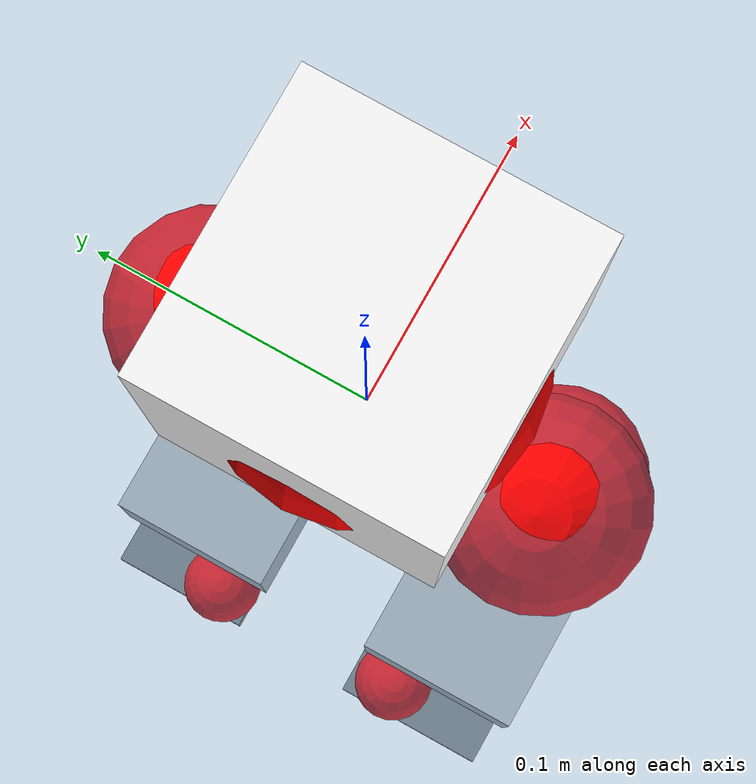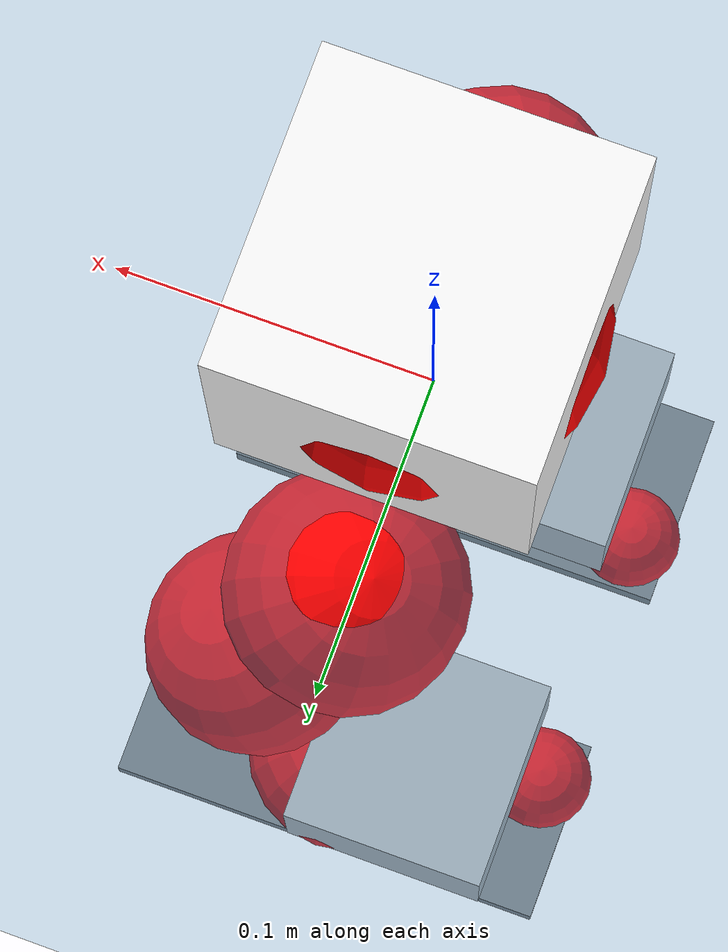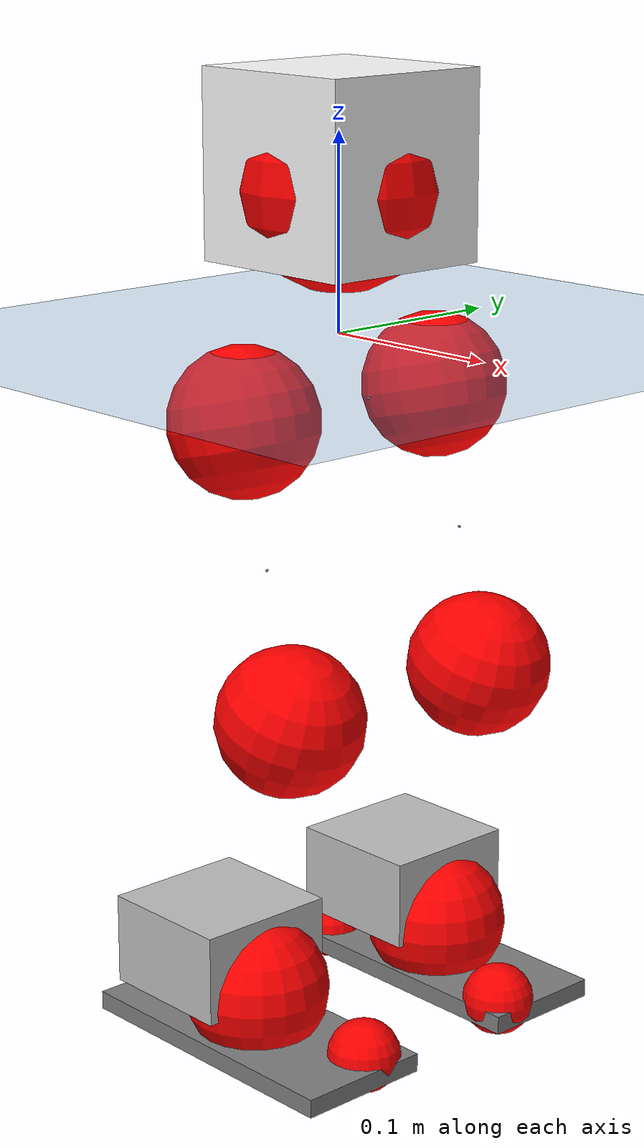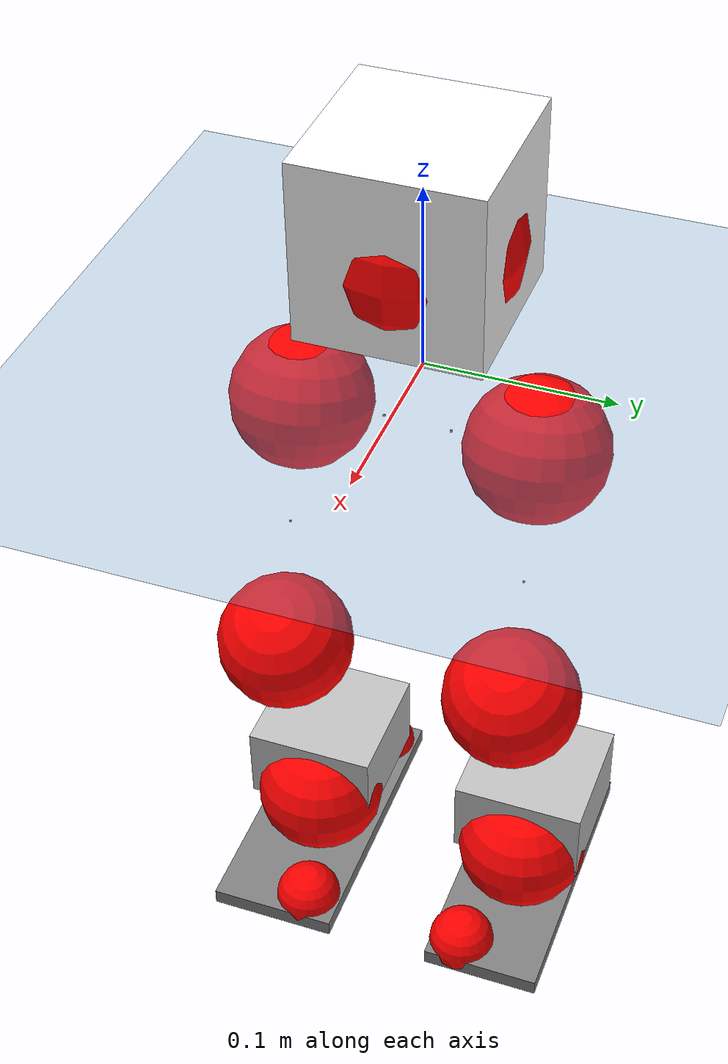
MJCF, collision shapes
<mujoco model="pi_12dof_release_v1">
  <compiler angle="radian" assetdir="assets" balanceinertia="true" inertiafromgeom="false"/>

  <option timestep="0.005" density="1.2" viscosity="2e-05"/>

  <size nkey="1"/>

  <visual>
    <quality shadowsize="8192"/>
    <map shadowclip="0.5"/>
  </visual>

  <default>
    <default class="/">
      <joint armature="0.01" damping="0.01" frictionloss="0.01"/>
      <geom contype="0" conaffinity="0" group="1" solref="-1000 -80"/>
      <site size="0.01 0.005 0.005" group="5"/>
      <general forcelimited="true" biastype="affine" gainprm="20" biasprm="0 -20 -0.5"/>
      <default class="foot">
        <geom size="0.0845 0.036 0.005" type="box" condim="6" group="4" priority="1" friction="0.9 0.2 0.2" solimp="0.015 1 0.005"/>
      </default>
      <default class="reward_collision_sphere">
        <geom group="5" rgba="1 0 0 1"/>
      </default>
    </default>
  </default>

  <asset>
    <texture type="skybox" colorspace="auto" name="//unnamed_texture_0" builtin="gradient" rgb1="0.95 0.95 0.95" rgb2="0.95 0.95 0.95" width="100" height="600"/>
    <texture type="2d" colorspace="auto" name="texplane" builtin="checker" rgb1="0.345 0.575 0.748" rgb2="0.345 0.575 0.748" markrgb="1 1 1" width="512" height="512"/>
    <material name="MatPlane" class="/" texture="texplane" texuniform="true" texrepeat="2 2" specular="0.9"/>
    <mesh name="baselink_1" class="/" file="baselink_1.STL"/>
    <mesh name="r_hip_pitch_link" class="/" file="r_hip_pitch_link.STL"/>
    <mesh name="r_hip_roll_link" class="/" file="r_hip_roll_link.STL"/>
    <mesh name="r_thigh_link" class="/" file="r_thigh_link.STL"/>
    <mesh name="r_calf_link" class="/" file="r_calf_link.STL"/>
    <mesh name="r_ankle_pitch_link" class="/" file="r_ankle_pitch_link.STL"/>
    <mesh name="r_ankle_roll_link" class="/" file="r_ankle_roll_link.STL"/>
    <mesh name="l_hip_pitch_link" class="/" file="l_hip_pitch_link.STL"/>
    <mesh name="l_hip_roll_link" class="/" file="l_hip_roll_link.STL"/>
    <mesh name="l_thigh_link" class="/" file="l_thigh_link.STL"/>
    <mesh name="l_calf_link" class="/" file="l_calf_link.STL"/>
    <mesh name="l_ankle_pitch_link" class="/" file="l_ankle_pitch_link.STL"/>
    <mesh name="l_ankle_roll_link" class="/" file="l_ankle_roll_link.STL"/>
  </asset>

  <worldbody>
    <geom name="floor" class="/" size="100 100 0.125" type="plane" group="0" material="MatPlane"/>
    <light name="toplight_shadow" class="/" pos="0 0 5" dir="0.0990148 0.0990148 -0.990148" type="directional" ambient="0.04 0.04 0.04" diffuse="0.55 0.55 0.55" specular="0.12 0.12 0.12"/>
    <light name="toplight_fill" class="/" pos="0 0 5" dir="0.0990148 0.0990148 -0.990148" type="directional" castshadow="false" ambient="0.04 0.04 0.04" diffuse="0.3 0.3 0.3" specular="0.08 0.08 0.08"/>
    <body name="trunk" pos="0.00216967 -0.000928997 -0.000553776" quat="1 3.68486e-06 0.000309771 0.000276651">
      <inertial pos="0.00249024 0.00044575 0.0423469" quat="0.695325 0.00886328 0.00937822 0.71858" mass="1.84018" diaginertia="0.00913455 0.0034793 0.00536829"/>
      <joint name="//unnamed_joint_0" type="free"/>
      <geom name="//unnamed_geom_1" class="/" type="mesh" density="0" rgba="1 1 1 1" mesh="baselink_1"/>
      <geom name="//unnamed_geom_2" class="/" size="0.0475125 0.0475125 0.0475125" pos="0 0 0.0841226" type="box" rgba="1 1 1 1"/>
      <geom name="//unnamed_geom_3" class="reward_collision_sphere" size="0.0522638" pos="0 0 0.0736073"/>
      <site name="imu" class="/" pos="-0.00488764 -0.000609863 -0.012522" size="0.0095025"/>
      <camera name="track" class="/" pos="0 -1.64499 0" quat="0.707107 0.707107 0 0" mode="trackcom"/>
      <camera name="ego_camera" class="/" pos="0.0732543 0 0.189276" quat="-0.5 -0.5 0.5 0.5"/>
      <body name="r_hip_pitch_link" pos="0.00125386 -0.0188328 -0.0346074" quat="0.992226 -0.0010296 -0.124443 0.000273629">
        <inertial pos="-0.00129329 -0.0459644 6.99134e-05" quat="-0.0191091 0.705728 -0.0279047 0.707675" mass="0.319196" diaginertia="9.69303e-05 3.63008e-05 0.000106131"/>
        <joint name="r_hip_pitch_joint" class="/" pos="0 0 0" axis="-0.0100561 -0.999917 0.00810215" stiffness="0.00161166" range="-1.70082 1.26341" armature="0.00946504" damping="0.0247967" frictionloss="0.00951916"/>
        <geom name="//unnamed_geom_4" class="/" type="mesh" density="0" rgba="0.75294 0.75294 0.75294 1" mesh="r_hip_pitch_link"/>
        <geom name="//unnamed_geom_5" class="/" size="0.000475125 0.000475125 0.000475125" type="box" rgba="0.75294 0.75294 0.75294 1"/>
        <body name="r_hip_roll_link" pos="-0.000709995 -0.0452847 0.000362142" quat="1 -6.86763e-06 3.30428e-05 -0.000154284">
          <inertial pos="-0.00141989 0.000276246 -0.0671227" quat="0.70604 -0.0788219 -0.0797709 0.699237" mass="0.339492" diaginertia="0.000301052 0.000106148 0.000167225"/>
          <joint name="r_hip_roll_joint" class="/" pos="0 0 0" axis="-0.999961 -0.00879128 0.000530291" stiffness="0.000395223" range="-0.120034 0.537334" armature="0.00914526" damping="0.00629878" frictionloss="0.00896818"/>
          <geom name="//unnamed_geom_6" class="/" type="mesh" density="0" rgba="0.75294 0.75294 0.75294 1" mesh="r_hip_roll_link"/>
          <geom name="//unnamed_geom_7" class="/" size="0.000475125 0.000475125 0.000475125" type="box" rgba="0.75294 0.75294 0.75294 1"/>
          <geom name="//unnamed_geom_8" class="reward_collision_sphere" size="0.03801"/>
          <body name="r_thigh_link" pos="0.000488797 -0.00199616 -0.0730367" quat="1 0.000349042 0.000386364 0.000168175">
            <inertial pos="-5.42546e-05 0.00205895 -0.050183" quat="0.743647 0.668532 -0.000988801 -0.00719916" mass="0.0974403" diaginertia="0.000109597 3.57303e-05 7.29855e-05"/>
            <joint name="r_thigh_joint" class="/" pos="0 0 0" axis="-0.00448038 0.000777919 -0.99999" range="-0.280239 0.643221" armature="0.00938535" damping="0.00447796" frictionloss="0.00978343"/>
            <geom name="//unnamed_geom_9" class="/" type="mesh" density="0" rgba="0.75294 0.75294 0.75294 1" mesh="r_thigh_link"/>
            <geom name="//unnamed_geom_10" class="/" size="0.000475125 0.000475125 0.000475125" type="box" rgba="0.75294 0.75294 0.75294 1"/>
            <body name="r_calf_link" pos="-0.00248685 0.000348412 -0.0754901" quat="0.947589 -0.000198246 0.319493 2.8842e-05">
              <inertial pos="0.00213771 -0.00178436 -0.075841" quat="0.999977 -0.00288384 0.00151297 0.00587368" mass="0.720112" diaginertia="0.00320583 0.00134627 0.000230977"/>
              <joint name="r_calf_joint" class="/" pos="0 0 0" axis="0.00402391 -0.999949 -0.00931454" range="-1.66148 0.645793" armature="0.00936893" damping="0.0114915" frictionloss="0.00958016"/>
              <geom name="//unnamed_geom_11" class="/" type="mesh" density="0" rgba="0.75294 0.75294 0.75294 1" mesh="r_calf_link"/>
              <geom name="//unnamed_geom_12" class="/" size="0.000475125 0.000475125 0.000475125" type="box" rgba="0.75294 0.75294 0.75294 1"/>
              <geom name="//unnamed_geom_13" class="reward_collision_sphere" size="0.03801"/>
              <body name="r_ankle_pitch_link" pos="0.000727876 0.000808251 -0.14685" quat="0.980066 -3.32564e-05 -0.198672 -2.61406e-05">
                <inertial pos="0.00495919 0.00559642 -0.00111073" quat="0.00223309 0.707414 -0.00244284 0.706792" mass="0.148827" diaginertia="0.000272676 8.22515e-05 0.000151817"/>
                <joint name="r_ankle_pitch_joint" class="/" pos="0 0 0" axis="0.00476245 -0.999988 0.00131116" range="-1.31542 0.498521" armature="0.00868914" damping="0.00600122" frictionloss="0.00899995"/>
                <geom name="//unnamed_geom_14" class="/" type="mesh" density="0" rgba="0.75294 0.75294 0.75294 1" mesh="r_ankle_pitch_link"/>
                <geom name="//unnamed_geom_15" class="/" size="0.0370598 0.03801 0.0237563" type="box" rgba="0.75294 0.75294 0.75294 1"/>
                <body name="r_ankle_roll_link" pos="0.0744487 0.00262649 0.0021627" quat="0.999999 -0.000362702 -0.00126013 0.000115217">
                  <inertial pos="-0.0207669 -0.000317138 -0.0135506" quat="0.559686 0.430611 0.433008 0.560205" mass="0.434928" diaginertia="0.00100256 0.000398015 0.000375992"/>
                  <joint name="r_ankle_roll_joint" class="/" pos="0 0 0" axis="-0.999929 -0.0119284 -0.000580423" range="-0.151527 0.151155" armature="0.00906481" damping="0.0192024" frictionloss="0.00954484"/>
                  <geom name="//unnamed_geom_16" class="/" type="mesh" density="0" rgba="0.75294 0.75294 0.75294 1" mesh="r_ankle_roll_link"/>
                  <geom name="//unnamed_geom_17" class="/" type="mesh" rgba="0.75294 0.75294 0.75294 1" mesh="r_ankle_roll_link"/>
                  <geom name="right_foot" class="foot" size="0.0826742 0.0364166 0.00484094" pos="-0.0498129 0 -0.0462675"/>
                  <geom name="//unnamed_geom_19" class="reward_collision_sphere" size="0.03801" pos="-0.0488362 0 -0.0210307"/>
                  <geom name="//unnamed_geom_20" class="reward_collision_sphere" size="0.019005" pos="0.0146509 0.0164499 -0.0420613"/>
                  <geom name="//unnamed_geom_21" class="reward_collision_sphere" size="0.019005" pos="-0.117207 0.0164499 -0.0420613"/>
                  <site name="right_foot" class="foot" pos="-0.0498129 0 -0.0462675" size="0.0095025"/>
                </body>
              </body>
            </body>
          </body>
        </body>
      </body>
      <body name="l_hip_pitch_link" pos="0.00218317 0.0175432 -0.0345115" quat="0.992202 0.000162797 -0.124641 -9.22193e-05">
        <inertial pos="0.00325524 0.0416945 -5.07385e-05" quat="-0.0341468 0.710329 0.0357546 0.702131" mass="0.336735" diaginertia="0.000115578 3.96647e-05 0.000126469"/>
        <joint name="l_hip_pitch_joint" class="/" pos="0 0 0" axis="0.00285871 0.999938 -0.0107455" range="-1.29362 1.75083" armature="0.00830459" damping="0.00743124" frictionloss="0.00928945"/>
        <geom name="//unnamed_geom_22" class="/" type="mesh" density="0" rgba="0.75294 0.75294 0.75294 1" mesh="l_hip_pitch_link"/>
        <geom name="//unnamed_geom_23" class="/" size="0.000475125 0.000475125 0.000475125" type="box" rgba="0.75294 0.75294 0.75294 1"/>
        <body name="l_hip_roll_link" pos="0.00097029 0.0456521 0.000768549" quat="1 -3.92784e-05 0.000445395 0.000109651">
          <inertial pos="-0.00241138 0.00248006 -0.0641861" quat="0.698852 -0.0767288 -0.0709908 0.707587" mass="0.33534" diaginertia="0.000297303 0.00010663 0.000162085"/>
          <joint name="l_hip_roll_joint" class="/" pos="0 0 0" axis="-0.999994 0.00293422 0.00196933" range="-0.503029 0.102203" armature="0.0104016" damping="0" frictionloss="0.00945625"/>
          <geom name="//unnamed_geom_24" class="/" type="mesh" density="0" rgba="0.75294 0.75294 0.75294 1" mesh="l_hip_roll_link"/>
          <geom name="//unnamed_geom_25" class="/" size="0.000475125 0.000475125 0.000475125" type="box" rgba="0.75294 0.75294 0.75294 1"/>
          <geom name="//unnamed_geom_26" class="reward_collision_sphere" size="0.03801"/>
          <body name="l_thigh_link" pos="-0.00032249 0.00144822 -0.0754667" quat="0.999999 -0.00114413 0.00025201 -0.000453101">
            <inertial pos="0.000250224 -0.00136374 -0.0474838" quat="0.675067 0.737757 0.000227451 0.00018234" mass="0.0936697" diaginertia="0.000110779 3.58121e-05 7.42445e-05"/>
            <joint name="l_thigh_joint" class="/" pos="0 0 0" axis="-0.00609068 0.000661217 -0.999981" range="-0.650236 0.29307" armature="0.00945616" damping="0" frictionloss="0.00973483"/>
            <geom name="//unnamed_geom_27" class="/" type="mesh" density="0" rgba="0.75294 0.75294 0.75294 1" mesh="l_thigh_link"/>
            <geom name="//unnamed_geom_28" class="/" size="0.000475125 0.000475125 0.000475125" type="box" rgba="0.75294 0.75294 0.75294 1"/>
            <body name="l_calf_link" pos="-0.00303688 0.000430481 -0.0729688" quat="0.947468 3.7621e-05 0.319851 5.57952e-05">
              <inertial pos="0.0013209 0.00206953 -0.073158" quat="0.999915 0.0105414 -0.00745629 -0.00193823" mass="0.701139" diaginertia="0.00314809 0.00133379 0.000226632"/>
              <joint name="l_calf_joint" class="/" pos="0 0 0" axis="0.0109513 0.999929 0.00459001" stiffness="0.00266216" range="-0.630902 1.63451" armature="0.00951236" damping="0.00994047" frictionloss="0.00862687"/>
              <geom name="//unnamed_geom_29" class="/" type="mesh" density="0" rgba="0.75294 0.75294 0.75294 1" mesh="l_calf_link"/>
              <geom name="//unnamed_geom_30" class="/" size="0.000475125 0.000475125 0.000475125" type="box" rgba="0.75294 0.75294 0.75294 1"/>
              <geom name="//unnamed_geom_31" class="reward_collision_sphere" size="0.03801"/>
              <body name="l_ankle_pitch_link" pos="0.000159946 0.00102838 -0.145376" quat="0.980005 8.65368e-05 -0.198972 0.000297511">
                <inertial pos="0.00359075 -0.00135364 -0.000989563" quat="-0.00570873 0.701561 0.0120606 0.712485" mass="0.151913" diaginertia="0.000271252 8.50102e-05 0.000158377"/>
                <joint name="l_ankle_pitch_joint" class="/" pos="0 0 0" axis="-0.0048173 0.999986 -0.00239498" range="-0.493644 1.31607" armature="0.0100214" damping="0" frictionloss="0.00929056"/>
                <geom name="//unnamed_geom_32" class="/" type="mesh" density="0" rgba="0.75294 0.75294 0.75294 1" mesh="l_ankle_pitch_link"/>
                <geom name="//unnamed_geom_33" class="/" size="0.0370598 0.03801 0.0237563" type="box" rgba="0.75294 0.75294 0.75294 1"/>
                <body name="l_ankle_roll_link" pos="0.0744733 0.00114067 -0.000157765" quat="1 4.09947e-05 3.0859e-05 3.95924e-06">
                  <inertial pos="-0.0263255 -0.00287453 -0.0128373" quat="0.561476 0.428688 0.433784 0.559287" mass="0.452821" diaginertia="0.000990509 0.000395522 0.000363031"/>
                  <joint name="l_ankle_roll_joint" class="/" pos="0 0 0" axis="-0.999989 0.00437865 0.00169198" stiffness="0.00594623" range="-0.167457 0.143536" armature="0.00954183" damping="0.0189866" frictionloss="0.0104987"/>
                  <geom name="//unnamed_geom_34" class="/" type="mesh" density="0" rgba="0.75294 0.75294 0.75294 1" mesh="l_ankle_roll_link"/>
                  <geom name="//unnamed_geom_35" class="/" type="mesh" rgba="0.75294 0.75294 0.75294 1" mesh="l_ankle_roll_link"/>
                  <geom name="left_foot" class="foot" size="0.0813566 0.0336504 0.00484368" pos="-0.0498129 0 -0.0462675"/>
                  <geom name="//unnamed_geom_37" class="reward_collision_sphere" size="0.03801" pos="-0.0488362 0 -0.0210307"/>
                  <geom name="//unnamed_geom_38" class="reward_collision_sphere" size="0.019005" pos="0.0146509 -0.0164499 -0.0420613"/>
                  <geom name="//unnamed_geom_39" class="reward_collision_sphere" size="0.019005" pos="-0.117207 -0.0164499 -0.0420613"/>
                  <site name="left_foot" class="foot" pos="-0.0498129 0 -0.0462675" size="0.0095025"/>
                </body>
              </body>
            </body>
          </body>
        </body>
      </body>
    </body>
  </worldbody>

  <contact>
    <pair class="/" geom1="floor" geom2="right_foot" name="//unnamed_contact_1"/>
    <pair class="/" geom1="floor" geom2="left_foot" name="//unnamed_contact_0"/>
  </contact>

  <actuator>
    <general name="r_hip_pitch_joint" class="/" joint="r_hip_pitch_joint" forcerange="-19.4632 19.4632" gainprm="19.2724" biasprm="0 -19.2724 -0.470757"/>
    <general name="r_hip_roll_joint" class="/" joint="r_hip_roll_joint" forcerange="-21.6899 21.6899" gainprm="19.2724" biasprm="0 -19.2724 -0.470757"/>
    <general name="r_thigh_joint" class="/" joint="r_thigh_joint" forcerange="-20.703 20.703" gainprm="19.2724" biasprm="0 -19.2724 -0.470757"/>
    <general name="r_calf_joint" class="/" joint="r_calf_joint" forcerange="-21.8241 21.8241" gainprm="19.2724" biasprm="0 -19.2724 -0.470757"/>
    <general name="r_ankle_pitch_joint" class="/" joint="r_ankle_pitch_joint" forcerange="-20.6418 20.6418" gainprm="19.2724" biasprm="0 -19.2724 -0.470757"/>
    <general name="r_ankle_roll_joint" class="/" joint="r_ankle_roll_joint" forcerange="-19.1658 19.1658" gainprm="19.2724" biasprm="0 -19.2724 -0.470757"/>
    <general name="l_hip_pitch_joint" class="/" joint="l_hip_pitch_joint" forcerange="-20.0338 20.0338" gainprm="19.2724" biasprm="0 -19.2724 -0.470757"/>
    <general name="l_hip_roll_joint" class="/" joint="l_hip_roll_joint" forcerange="-18.5935 18.5935" gainprm="19.2724" biasprm="0 -19.2724 -0.470757"/>
    <general name="l_thigh_joint" class="/" joint="l_thigh_joint" forcerange="-19.3663 19.3663" gainprm="19.2724" biasprm="0 -19.2724 -0.470757"/>
    <general name="l_calf_joint" class="/" joint="l_calf_joint" forcerange="-19.829 19.829" gainprm="19.2724" biasprm="0 -19.2724 -0.470757"/>
    <general name="l_ankle_pitch_joint" class="/" joint="l_ankle_pitch_joint" forcerange="-20.1718 20.1718" gainprm="19.2724" biasprm="0 -19.2724 -0.470757"/>
    <general name="l_ankle_roll_joint" class="/" joint="l_ankle_roll_joint" forcerange="-20.0972 20.0972" gainprm="19.2724" biasprm="0 -19.2724 -0.470757"/>
  </actuator>

  <sensor>
    <gyro site="imu" name="imu_angular_velocity"/>
    <velocimeter site="imu" name="imu_linear_velocity"/>
    <framelinvel objtype="site" objname="left_foot" name="left_foot_global_linear_velocity"/>
    <framelinvel objtype="site" objname="right_foot" name="right_foot_global_linear_velocity"/>
  </sensor>

  <keyframe>
    <key name="home" qpos="0 0 0.291 1 0 0 0 0.4 0 0 -0.8 0.4 0 -0.4 0 0 0.8 -0.4 0"/>
  </keyframe>
</mujoco>
